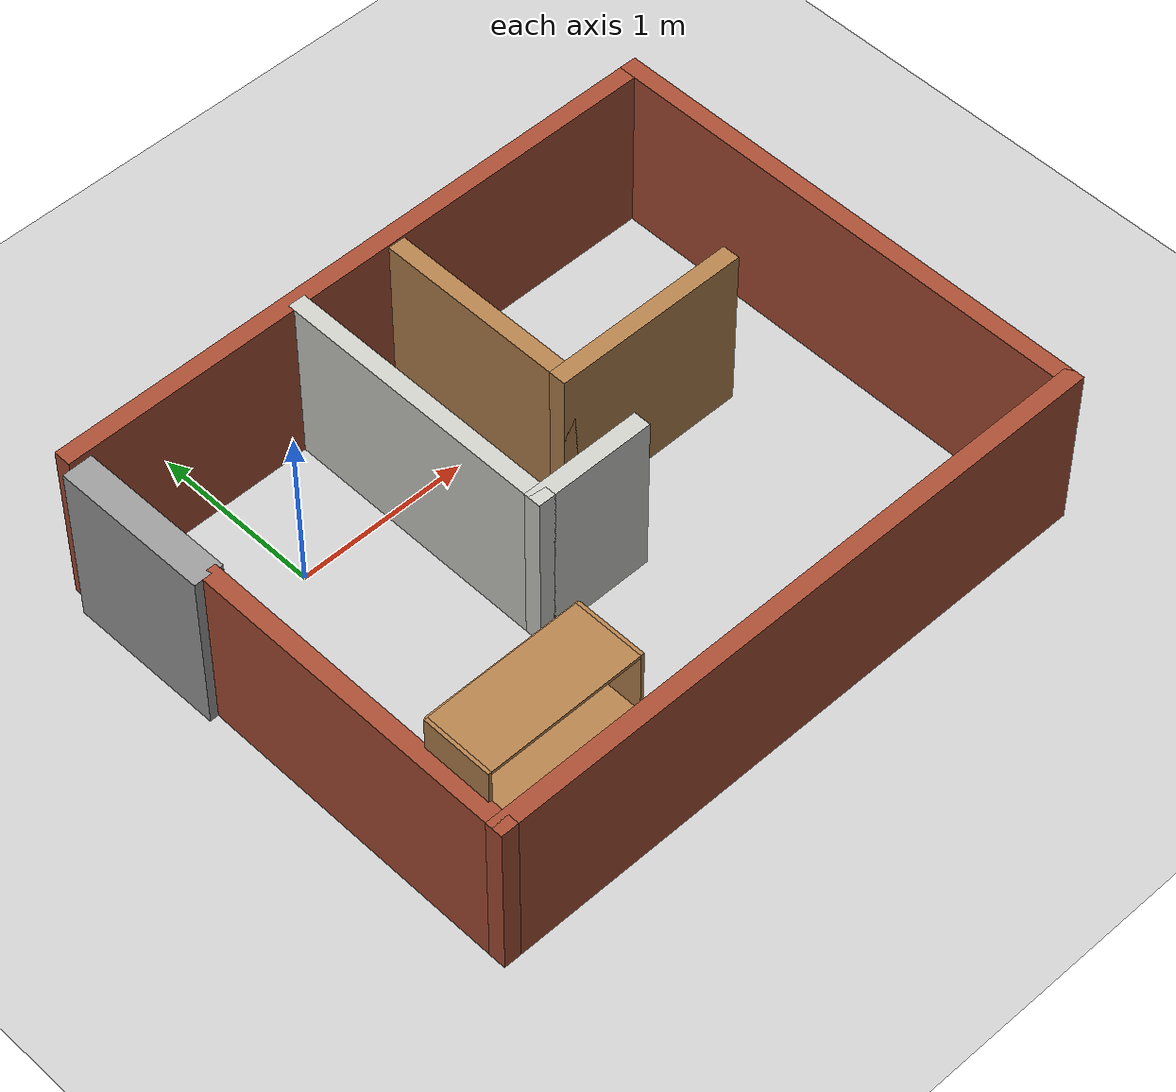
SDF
<sdf version="1.7">
 <world name="default">
  <light name="sun" type="directional">
   <pose>0 0 10 0 -0 0</pose>
   <diffuse>0.8 0.8 0.8 1</diffuse>
   <specular>0.2 0.2 0.2 1</specular>
   <attenuation>
    <range>1000</range>
    <constant>0.9</constant>
    <linear>0.01</linear>
    <quadratic>0.001</quadratic>
   </attenuation>
   <direction>-0.5 0.1 -0.9</direction>
   <spot><inner_angle>0</inner_angle><outer_angle>0</outer_angle><falloff>0</falloff></spot>
  </light>
  <model name="ground_plane">
   <static>1</static>
   <link name="link">
    <collision name="collision">
     <geometry><plane><normal>0 0 1</normal><size>100 100</size></plane></geometry>
     <surface>
      <contact><collide_bitmask>65535</collide_bitmask></contact>
      <friction><ode><mu>100</mu><mu2>50</mu2></ode></friction>
     </surface>
    </collision>
    <visual name="visual">
     <cast_shadows>0</cast_shadows>
     <geometry><plane><normal>0 0 1</normal><size>100 100</size></plane></geometry>
     <material>
      <script><uri>file://media/materials/scripts/gazebo.material</uri><name>Gazebo/Grey</name></script>
     </material>
    </visual>
   </link>
  </model>
  <gravity>0 0 -9.8</gravity>
  <magnetic_field>6e-06 2.3e-05 -4.2e-05</magnetic_field>
  <atmosphere type="adiabatic"/>
  <physics type="ode">
   <max_step_size>0.001</max_step_size>
   <real_time_factor>1</real_time_factor>
   <real_time_update_rate>1000</real_time_update_rate>
  </physics>
  <scene><ambient>0.4 0.4 0.4 1</ambient><background>0.7 0.7 0.7 1</background><shadows>1</shadows></scene>
  <spherical_coordinates>
   <surface_model>EARTH_WGS84</surface_model>
   <latitude_deg>0</latitude_deg>
   <longitude_deg>0</longitude_deg>
   <elevation>0</elevation>
   <heading_deg>0</heading_deg>
  </spherical_coordinates>
  <model name="house">
   <pose>1.02685 -0.433896 0 0 -0 0</pose>
   <link name="Door_0">
    <collision name="Door_0_Collision">
     <geometry><box><size>0.9 0.17 1</size></box></geometry>
     <pose>0 0 0.5 0 -0 0</pose>
    </collision>
    <visual name="Door_0_Visual">
     <pose>0 0 0.5 0 -0 0</pose>
     <geometry><box><size>0.9 0.17 1</size></box></geometry>
     <material>
      <script><uri>file://media/materials/scripts/gazebo.material</uri><name>Gazebo/Grey</name></script>
     </material>
    </visual>
    <pose>-1.82 0.555 0 0 -0 1.58392</pose>
   </link>
   <link name="Wall_0">
    <collision name="Wall_0_Collision">
     <geometry><box><size>3.7 0.1 1</size></box></geometry>
     <pose>0 0 0.5 0 -0 0</pose>
    </collision>
    <visual name="Wall_0_Visual">
     <pose>0 0 0.5 0 -0 0</pose>
     <geometry><box><size>3.7 0.1 1</size></box></geometry>
     <material>
      <script><uri>file://media/materials/scripts/gazebo.material</uri><name>Gazebo/Bricks</name></script>
      <ambient>0.760784 0.662745 0.627451 1</ambient>
     </material>
     <meta><layer>0</layer></meta>
    </visual>
    <pose>0 1.085 0 0 -0 0</pose>
   </link>
   <link name="Wall_1">
    <collision name="Wall_1_Collision">
     <geometry><box><size>2.95 0.1 1</size></box></geometry>
     <pose>0 0 0.5 0 -0 0</pose>
    </collision>
    <visual name="Wall_1_Visual">
     <pose>0 0 0.5 0 -0 0</pose>
     <geometry><box><size>2.95 0.1 1</size></box></geometry>
     <material>
      <script><uri>file://media/materials/scripts/gazebo.material</uri><name>Gazebo/Bricks</name></script>
      <ambient>0.760784 0.662745 0.627451 1</ambient>
     </material>
     <meta><layer>0</layer></meta>
    </visual>
    <pose>1.8 -0.34 0 0 -0 -1.5708</pose>
   </link>
   <link name="Wall_11">
    <collision name="Wall_11_Collision">
     <geometry><box><size>0.7 0.1 1</size></box></geometry>
     <pose>0 0 0.5 0 -0 0</pose>
    </collision>
    <visual name="Wall_11_Visual">
     <pose>0 0 0.5 0 -0 0</pose>
     <geometry><box><size>0.7 0.1 1</size></box></geometry>
     <material>
      <script><uri>file://media/materials/scripts/gazebo.material</uri><name>Gazebo/CeilingTiled</name></script>
      <ambient>0.435294 0.796078 0.67451 1</ambient>
     </material>
     <meta><layer>0</layer></meta>
    </visual>
    <pose>-0.14 -0.575 0 0 -0 0</pose>
   </link>
   <link name="Wall_2">
    <collision name="Wall_2_Collision">
     <geometry><box><size>3.7 0.1 1</size></box></geometry>
     <pose>0 0 0.5 0 -0 0</pose>
    </collision>
    <visual name="Wall_2_Visual">
     <pose>0 0 0.5 0 -0 0</pose>
     <geometry><box><size>3.7 0.1 1</size></box></geometry>
     <material>
      <script><uri>file://media/materials/scripts/gazebo.material</uri><name>Gazebo/Bricks</name></script>
      <ambient>0.760784 0.662745 0.627451 1</ambient>
     </material>
     <meta><layer>0</layer></meta>
    </visual>
    <pose>0 -1.765 0 0 -0 3.14159</pose>
   </link>
   <link name="Wall_3">
    <collision name="Wall_3_Collision">
     <geometry><box><size>1.95 0.1 1</size></box></geometry>
     <pose>0 0 0.5 0 -0 0</pose>
    </collision>
    <visual name="Wall_3_Visual">
     <pose>0 0 0.5 0 -0 0</pose>
     <geometry><box><size>1.95 0.1 1</size></box></geometry>
     <material>
      <script><uri>file://media/materials/scripts/gazebo.material</uri><name>Gazebo/Bricks</name></script>
      <ambient>0.760784 0.662745 0.627451 1</ambient>
     </material>
     <meta><layer>0</layer></meta>
    </visual>
    <pose>-1.8 -0.84 0 0 -0 1.5708</pose>
   </link>
   <link name="Wall_5">
    <collision name="Wall_5_Collision">
     <geometry><box><size>1.2 0.1 1</size></box></geometry>
     <pose>0 0 0.5 0 -0 0</pose>
    </collision>
    <visual name="Wall_5_Visual">
     <pose>0 0 0.5 0 -0 0</pose>
     <geometry><box><size>1.2 0.1 1</size></box></geometry>
     <material>
      <script><uri>file://media/materials/scripts/gazebo.material</uri><name>Gazebo/Wood</name></script>
      <ambient>1 0.764706 0.305882 1</ambient>
     </material>
     <meta><layer>0</layer></meta>
    </visual>
    <pose>0.15 0.425 0 0 -0 1.5708</pose>
   </link>
   <link name="Wall_7">
    <collision name="Wall_7_Collision">
     <geometry><box><size>1.15 0.1 1</size></box></geometry>
     <pose>0 0 0.5 0 -0 0</pose>
    </collision>
    <visual name="Wall_7_Visual">
     <pose>0 0 0.5 0 -0 0</pose>
     <geometry><box><size>1.15 0.1 1</size></box></geometry>
     <material>
      <script><uri>file://media/materials/scripts/gazebo.material</uri><name>Gazebo/Wood</name></script>
      <ambient>1 0.764706 0.305882 1</ambient>
     </material>
     <meta><layer>0</layer></meta>
    </visual>
    <pose>0.675 -0.125 0 0 -0 0</pose>
   </link>
   <link name="Wall_9">
    <collision name="Wall_9_Collision">
     <geometry><box><size>1.7 0.1 1</size></box></geometry>
     <pose>0 0 0.5 0 -0 0</pose>
    </collision>
    <visual name="Wall_9_Visual">
     <pose>0 0 0.5 0 -0 0</pose>
     <geometry><box><size>1.7 0.1 1</size></box></geometry>
     <material>
      <script><uri>file://media/materials/scripts/gazebo.material</uri><name>Gazebo/CeilingTiled</name></script>
      <ambient>0.435294 0.796078 0.67451 1</ambient>
     </material>
     <meta><layer>0</layer></meta>
    </visual>
    <pose>-0.44 0.225 0 0 -0 1.5708</pose>
   </link>
   <static>1</static>
  </model>
  <model name="bookshelf">
   <static>1</static>
   <link name="link">
    <inertial><mass>1</mass></inertial>
    <collision name="back">
     <pose>0 0.005 0.6 0 -0 0</pose>
     <geometry><box><size>0.9 0.01 1.2</size></box></geometry>
    </collision>
    <visual name="visual1">
     <pose>0 0.005 0.6 0 -0 0</pose>
     <geometry><box><size>0.9 0.01 1.2</size></box></geometry>
     <material>
      <script><uri>file://media/materials/scripts/gazebo.material</uri><name>Gazebo/Wood</name></script>
     </material>
    </visual>
    <collision name="left_side">
     <pose>0.45 -0.195 0.6 0 -0 0</pose>
     <geometry><box><size>0.02 0.4 1.2</size></box></geometry>
    </collision>
    <visual name="visual2">
     <pose>0.45 -0.195 0.6 0 -0 0</pose>
     <geometry><box><size>0.02 0.4 1.2</size></box></geometry>
     <material>
      <script><uri>file://media/materials/scripts/gazebo.material</uri><name>Gazebo/Wood</name></script>
     </material>
    </visual>
    <collision name="right_side">
     <pose>-0.45 -0.195 0.6 0 -0 0</pose>
     <geometry><box><size>0.02 0.4 1.2</size></box></geometry>
    </collision>
    <visual name="visual3">
     <pose>-0.45 -0.195 0.6 0 -0 0</pose>
     <geometry><box><size>0.02 0.4 1.2</size></box></geometry>
     <material>
      <script><uri>file://media/materials/scripts/gazebo.material</uri><name>Gazebo/Wood</name></script>
     </material>
    </visual>
    <collision name="bottom">
     <pose>0 -0.195 0.03 0 -0 0</pose>
     <geometry><box><size>0.88 0.4 0.06</size></box></geometry>
    </collision>
    <visual name="visual4">
     <pose>0 -0.195 0.03 0 -0 0</pose>
     <geometry><box><size>0.88 0.4 0.06</size></box></geometry>
     <material>
      <script><uri>file://media/materials/scripts/gazebo.material</uri><name>Gazebo/Wood</name></script>
     </material>
    </visual>
    <collision name="top">
     <pose>0 -0.195 1.19 0 -0 0</pose>
     <geometry><box><size>0.88 0.4 0.02</size></box></geometry>
    </collision>
    <visual name="visual5">
     <pose>0 -0.195 1.19 0 -0 0</pose>
     <geometry><box><size>0.88 0.4 0.02</size></box></geometry>
     <material>
      <script><uri>file://media/materials/scripts/gazebo.material</uri><name>Gazebo/Wood</name></script>
     </material>
    </visual>
    <collision name="low_shelf">
     <pose>0 -0.195 0.43 0 -0 0</pose>
     <geometry><box><size>0.88 0.4 0.02</size></box></geometry>
    </collision>
    <visual name="visual6">
     <pose>0 -0.195 0.43 0 -0 0</pose>
     <geometry><box><size>0.88 0.4 0.02</size></box></geometry>
     <material>
      <script><uri>file://media/materials/scripts/gazebo.material</uri><name>Gazebo/Wood</name></script>
     </material>
    </visual>
    <collision name="high_shelf">
     <pose>0 -0.195 0.8 0 -0 0</pose>
     <geometry><box><size>0.88 0.4 0.02</size></box></geometry>
    </collision>
    <visual name="visual7">
     <pose>0 -0.195 0.8 0 -0 0</pose>
     <geometry><box><size>0.88 0.4 0.02</size></box></geometry>
     <material>
      <script><uri>file://media/materials/scripts/gazebo.material</uri><name>Gazebo/Wood</name></script>
     </material>
    </visual>
   </link>
   <pose>-0.279738 -1.68881 0 0 -0 0</pose>
  </model>
 </world>
</sdf>
